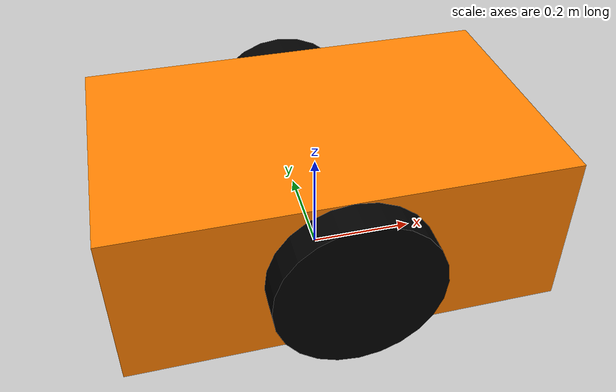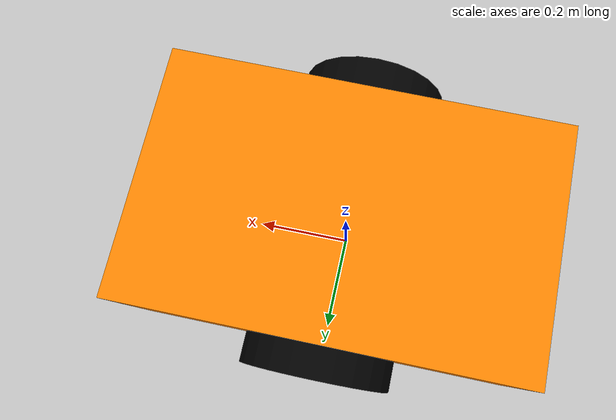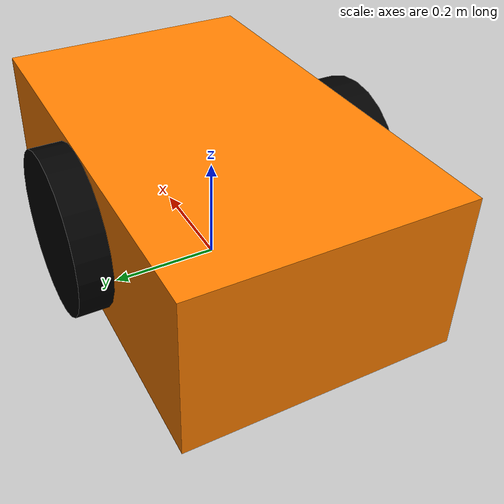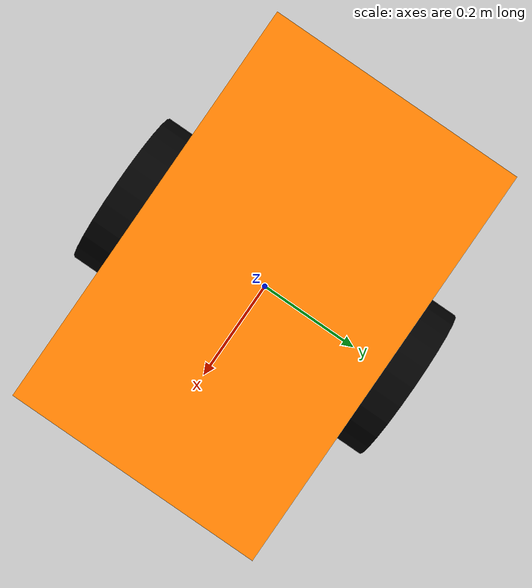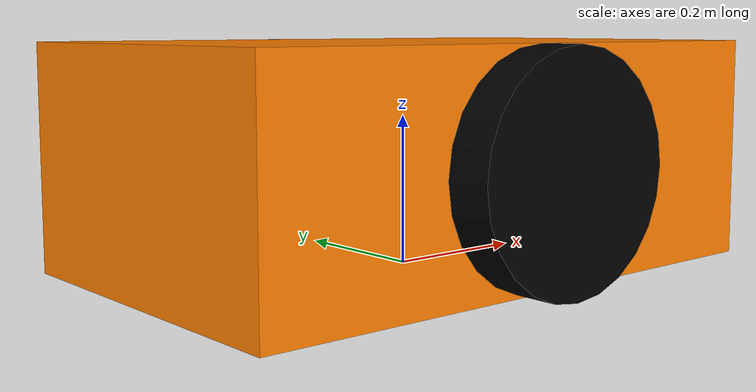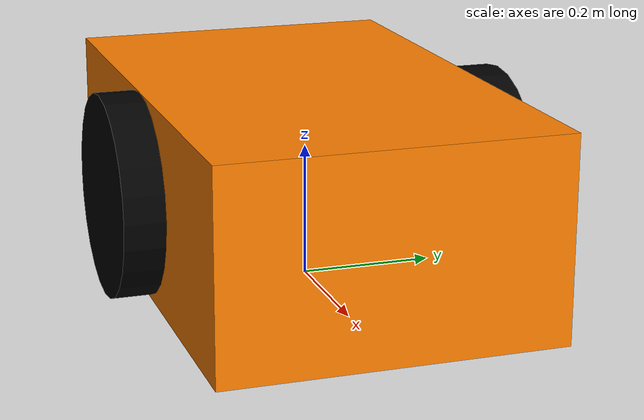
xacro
<?xml version="1.0"?>
<robot xmlns:xacro="http://www.ros.org/wiki/xacro" name="amr_2">

  <link name="base_footprint"/>

  <joint name="base_joint" type="fixed">
    <parent link="base_footprint"/>
    <child link="base_link"/>
    <origin xyz="0 0 0.15" rpy="0 0 0"/>
  </joint>

  <link name="base_link">
    <visual>
      <geometry>
        <box size="0.8 0.5 0.3"/>
      </geometry>
      <material name="orange">
        <color rgba="1.0 0.5 0.0 1.0"/>
      </material>
    </visual>
    <collision>
      <geometry>
        <box size="0.8 0.5 0.3"/>
      </geometry>
    </collision>
    <inertial>
      <mass value="10.0"/>
      <origin xyz="0 0 0"/>
      <inertia ixx="0.283" ixy="0.0" ixz="0.0" iyy="0.608" iyz="0.0" izz="0.741"/>
    </inertial>
  </link>

  <joint name="left_wheel_joint" type="continuous">
    <parent link="base_link"/>
    <child link="left_wheel"/>
    <origin xyz="0 0.28 0" rpy="-1.5708 0 0"/>
    <axis xyz="0 0 1"/>
  </joint>

  <link name="left_wheel">
    <visual>
      <geometry>
        <cylinder radius="0.15" length="0.06"/>
      </geometry>
      <material name="black">
        <color rgba="0.0 0.0 0.0 1.0"/>
      </material>
    </visual>
    <collision>
      <geometry>
        <cylinder radius="0.15" length="0.06"/>
      </geometry>
    </collision>
    <inertial>
      <mass value="2.0"/>
      <inertia ixx="0.0118" ixy="0.0" ixz="0.0" iyy="0.0118" iyz="0.0" izz="0.0225"/>
    </inertial>
  </link>

  <joint name="right_wheel_joint" type="continuous">
    <parent link="base_link"/>
    <child link="right_wheel"/>
    <origin xyz="0 -0.28 0" rpy="-1.5708 0 0"/>
    <axis xyz="0 0 1"/>
  </joint>

  <link name="right_wheel">
    <visual>
      <geometry>
        <cylinder radius="0.15" length="0.06"/>
      </geometry>
      <material name="black">
        <color rgba="0.0 0.0 0.0 1.0"/>
      </material>
    </visual>
    <collision>
      <geometry>
        <cylinder radius="0.15" length="0.06"/>
      </geometry>
    </collision>
    <inertial>
      <mass value="2.0"/>
      <inertia ixx="0.0118" ixy="0.0" ixz="0.0" iyy="0.0118" iyz="0.0" izz="0.0225"/>
    </inertial>
  </link>

  <joint name="caster_joint" type="fixed">
    <parent link="base_link"/>
    <child link="caster_wheel"/>
    <origin xyz="0.3 0 -0.075" rpy="0 0 0"/>
  </joint>

  <link name="caster_wheel">
    <visual>
      <geometry>
        <sphere radius="0.075"/>
      </geometry>
    </visual>
    <collision>
      <geometry>
        <sphere radius="0.075"/>
      </geometry>
    </collision>
    <inertial>
      <mass value="0.5"/>
      <inertia ixx="0.0011" ixy="0.0" ixz="0.0" iyy="0.0011" iyz="0.0" izz="0.0011"/>
    </inertial>
  </link>

  <gazebo reference="left_wheel">
    <mu1 value="1.0"/>
    <mu2 value="1.0"/>
  </gazebo>
  <gazebo reference="right_wheel">
    <mu1 value="1.0"/>
    <mu2 value="1.0"/>
  </gazebo>
  <gazebo reference="caster_wheel">
    <mu1 value="0.0"/>
    <mu2 value="0.0"/>
  </gazebo>
  <gazebo reference="base_link">
    <material>Gazebo/Orange</material>
  </gazebo>

  <gazebo>
    <plugin name="amr_2_diff_drive" filename="libgazebo_ros_diff_drive.so">
      <ros>
        <namespace>/amr_2</namespace>
        <remapping>cmd_vel:=cmd_vel</remapping>
        <remapping>odom:=odom</remapping>
      </ros>

      <update_rate>30</update_rate>
      <left_joint>left_wheel_joint</left_joint>
      <right_joint>right_wheel_joint</right_joint>

      <wheel_separation>0.56</wheel_separation>
      <wheel_diameter>0.3</wheel_diameter>

      <max_wheel_torque>80</max_wheel_torque>
      <max_wheel_acceleration>2.0</max_wheel_acceleration>

      <publish_odom>true</publish_odom>
      <publish_odom_tf>true</publish_odom_tf>
      <publish_wheel_tf>false</publish_wheel_tf>

      <odometry_frame>amr_2/odom</odometry_frame>
      <robot_base_frame>amr_2/base_footprint</robot_base_frame>
    </plugin>
  </gazebo>

</robot>
